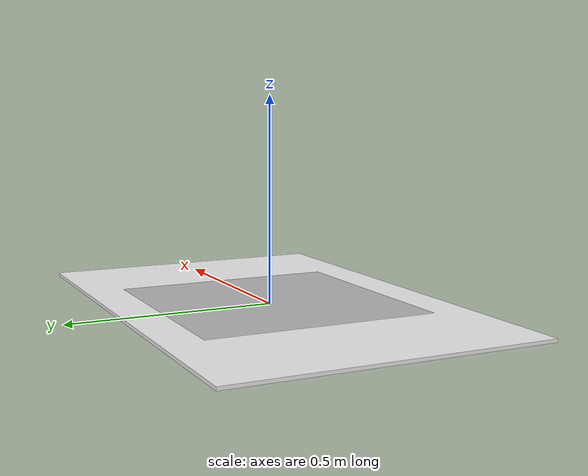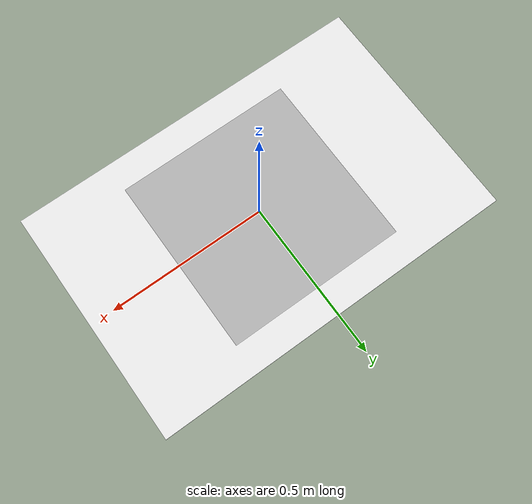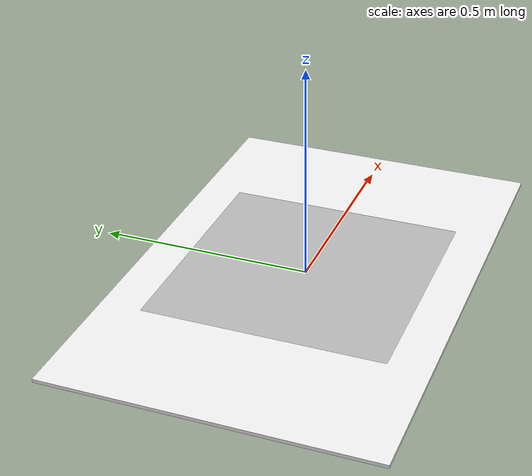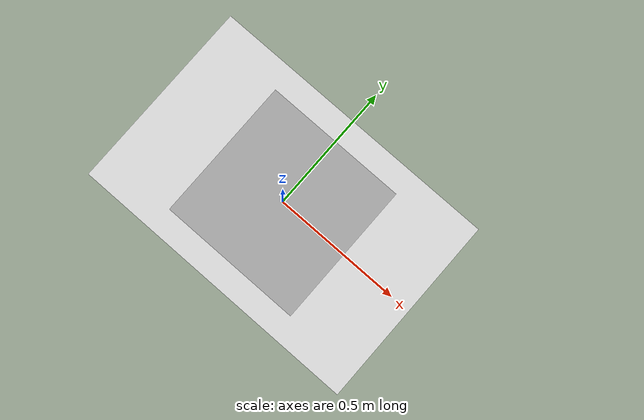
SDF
<?xml version="1.0"?>
<sdf version="1.9">
  <model name="apriltag_16h5_id2">
    <static>true</static>
    <link name="link">
      <visual name="plate">
        <pose>0 0 0.004 0 0 0</pose>
        <geometry><box><size>1.15 0.75 0.008</size></box></geometry>
        <material>
          <ambient>0.90 0.90 0.90 1</ambient>
          <diffuse>0.95 0.95 0.95 1</diffuse>
          <specular>0.05 0.05 0.05 1</specular>
        </material>
      </visual>
      <!-- 태그: quiet zone 포함 0.560 m 평면. 검은 테두리 한 변 0.420 m.
           UV 를 직접 쓴 메쉬라 렌더러의 box UV 규약에 의존하지 않는다
           (거울상이면 검출 자체가 실패하므로). -->
      <visual name="tag">
        <pose>0 0 0.0085 0 0 0</pose>
        <geometry>
          <mesh><uri>model://apriltag_16h5_id2/meshes/apriltag_16h5_id2.obj</uri></mesh>
        </geometry>
      </visual>
      <collision name="plate">
        <pose>0 0 0.004 0 0 0</pose>
        <geometry><box><size>1.15 0.75 0.008</size></box></geometry>
      </collision>
    </link>
  </model>
</sdf>
